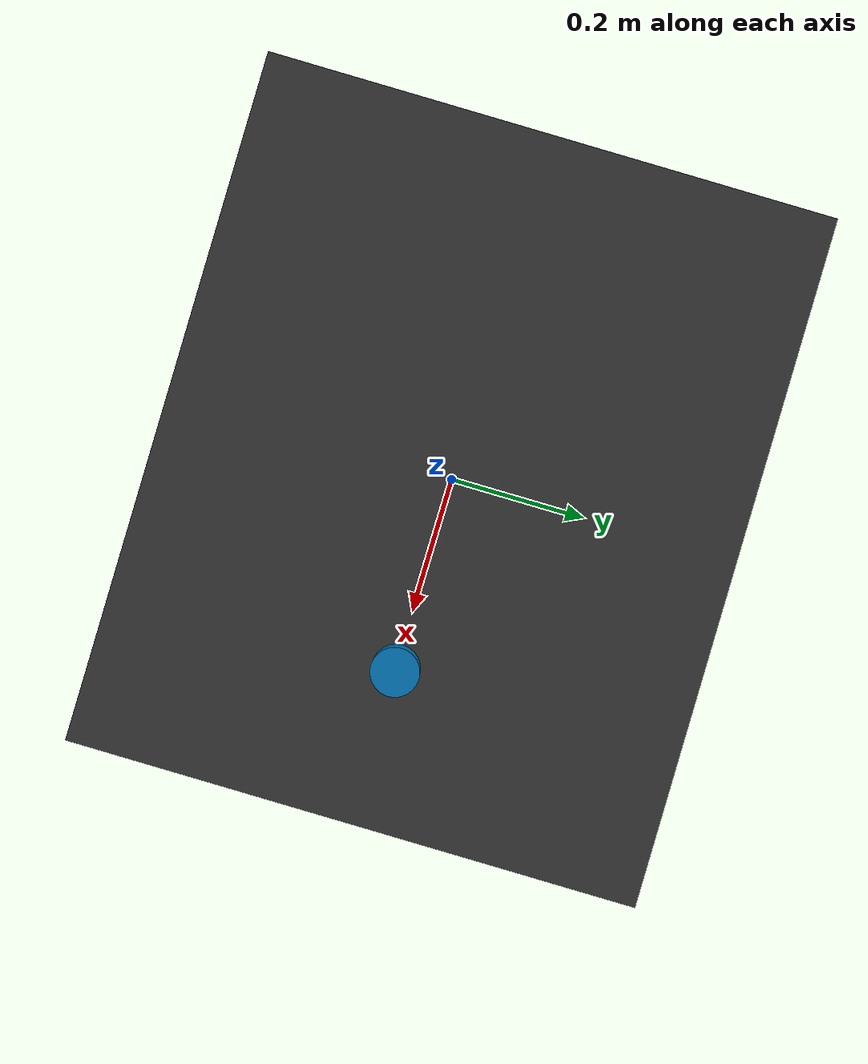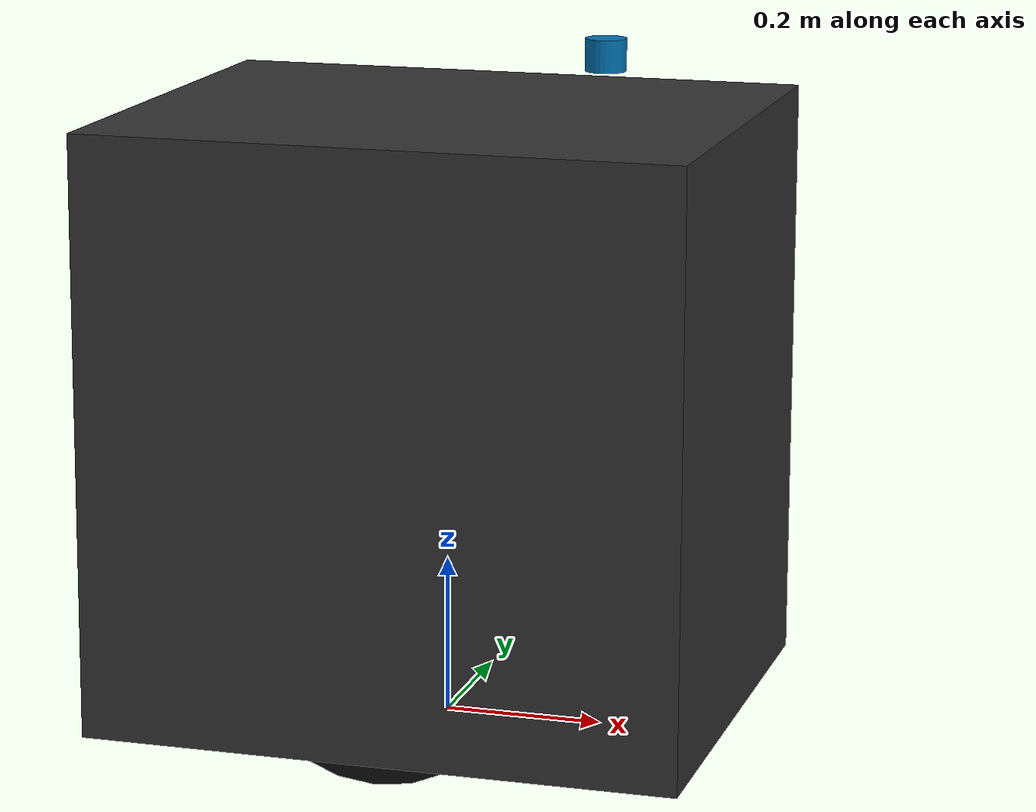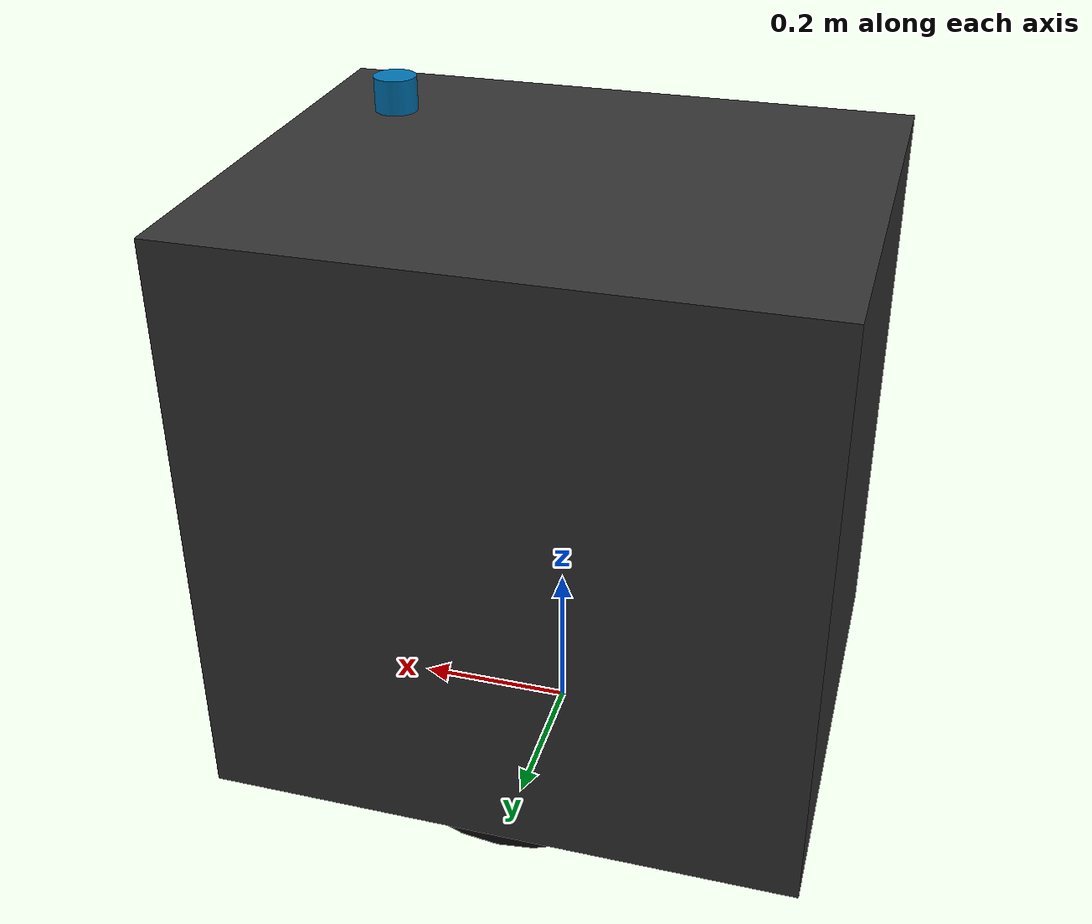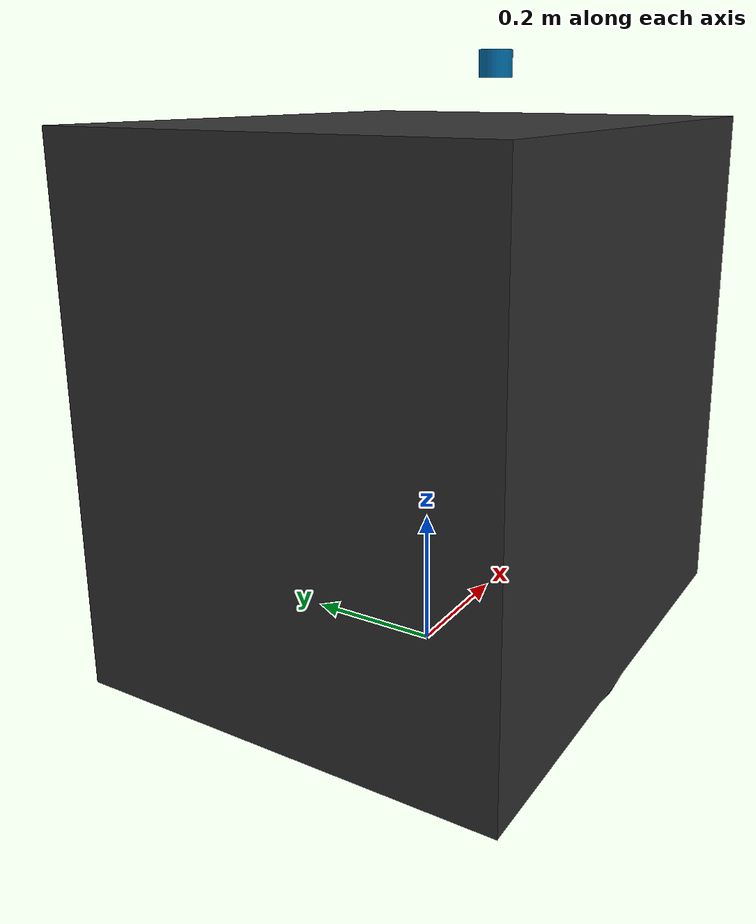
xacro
<?xml version="1.0"?>
<robot xmlns:xacro="http://www.ros.org/wiki/xacro" name="a300">
  <xacro:arg name="use_sim" default="false"/>
  <material name="body"><color rgba="0.2 0.2 0.2 1"/></material>
  <material name="wheel"><color rgba="0.05 0.05 0.05 1"/></material>
  <link name="base_link">
    <visual><origin xyz="0 0 0.40"/><geometry><box size="0.75 0.62 0.75"/></geometry><material name="body"/></visual>
    <collision><origin xyz="0 0 0.40"/><geometry><box size="0.75 0.62 0.75"/></geometry></collision>
    <inertial><origin xyz="0 0 0.40"/><mass value="60"/><inertia ixx="3.0" ixy="0" ixz="0" iyy="4.0" iyz="0" izz="4.0"/></inertial>
  </link>
  <link name="left_wheel"><visual><geometry><cylinder radius="0.18" length="0.05"/></geometry><material name="wheel"/></visual><collision><geometry><cylinder radius="0.18" length="0.05"/></geometry></collision><inertial><mass value="2.0"/><inertia ixx="0.03" ixy="0" ixz="0" iyy="0.03" iyz="0" izz="0.03"/></inertial></link>
  <link name="right_wheel"><visual><geometry><cylinder radius="0.18" length="0.05"/></geometry><material name="wheel"/></visual><collision><geometry><cylinder radius="0.18" length="0.05"/></geometry></collision><inertial><mass value="2.0"/><inertia ixx="0.03" ixy="0" ixz="0" iyy="0.03" iyz="0" izz="0.03"/></inertial></link>
  <joint name="left_wheel_joint" type="continuous"><parent link="base_link"/><child link="left_wheel"/><origin xyz="0 0.275 0.18" rpy="1.5708 0 0"/><axis xyz="0 0 1"/></joint>
  <joint name="right_wheel_joint" type="continuous"><parent link="base_link"/><child link="right_wheel"/><origin xyz="0 -0.275 0.18" rpy="1.5708 0 0"/><axis xyz="0 0 1"/></joint>
  <link name="caster"><visual><origin xyz="0 0 0.08"/><geometry><sphere radius="0.08"/></geometry></visual><collision><origin xyz="0 0 0.08"/><geometry><sphere radius="0.08"/></geometry></collision><inertial><mass value="1.0"/><inertia ixx="0.003" ixy="0" ixz="0" iyy="0.003" iyz="0" izz="0.003"/></inertial></link>
  <joint name="caster_joint" type="fixed"><parent link="base_link"/><child link="caster"/><origin xyz="-0.28 0 0"/></joint>
  <link name="laser_link"><visual><geometry><cylinder radius="0.025" length="0.04"/></geometry></visual><inertial><mass value="0.2"/><inertia ixx="0.0001" ixy="0" ixz="0" iyy="0.0001" iyz="0" izz="0.0001"/></inertial></link>
  <joint name="laser_joint" type="fixed"><parent link="base_link"/><child link="laser_link"/><origin xyz="0.20 0 0.85"/></joint>
  <xacro:if value="$(arg use_sim)">
    <xacro:include filename="$(find a300_description)/urdf/a300.gazebo.xacro"/>
    <xacro:a300_gazebo_plugins/>
  </xacro:if>
</robot>
